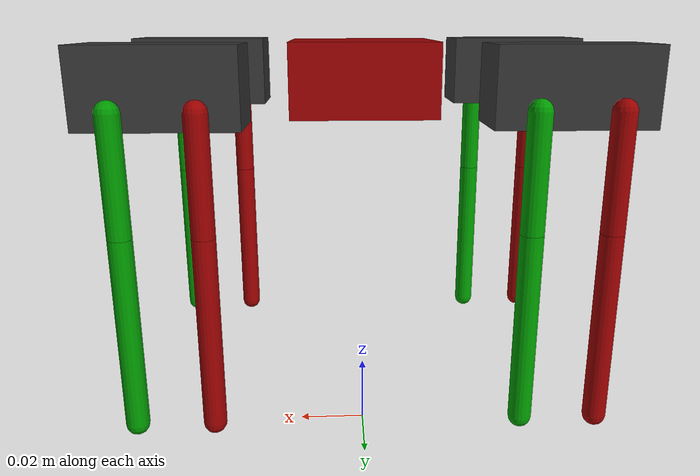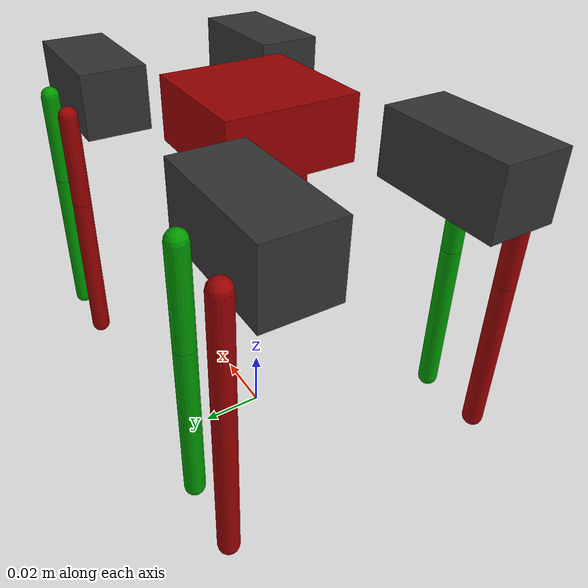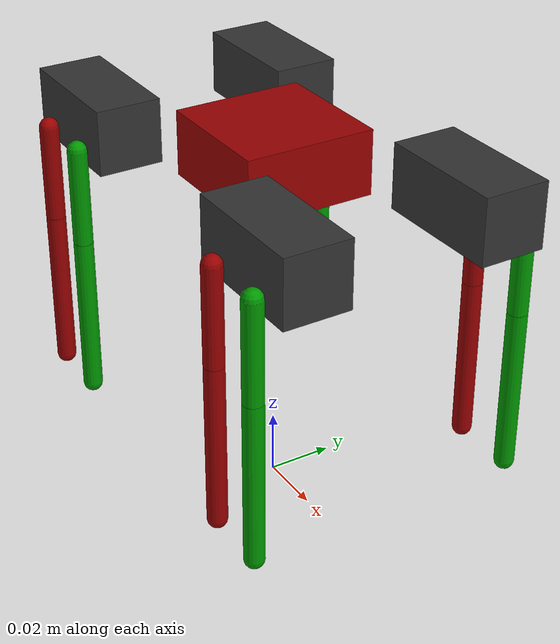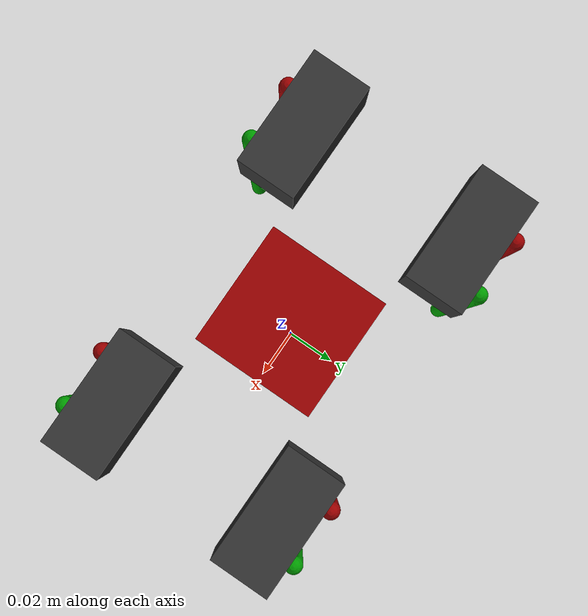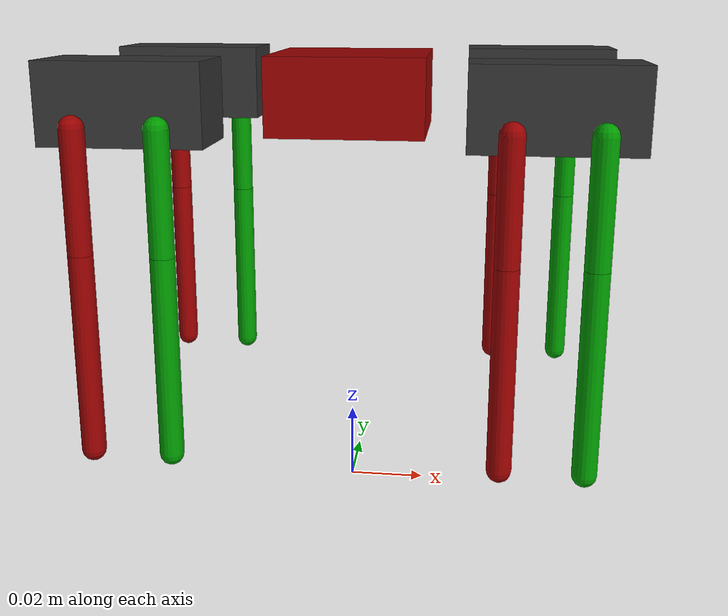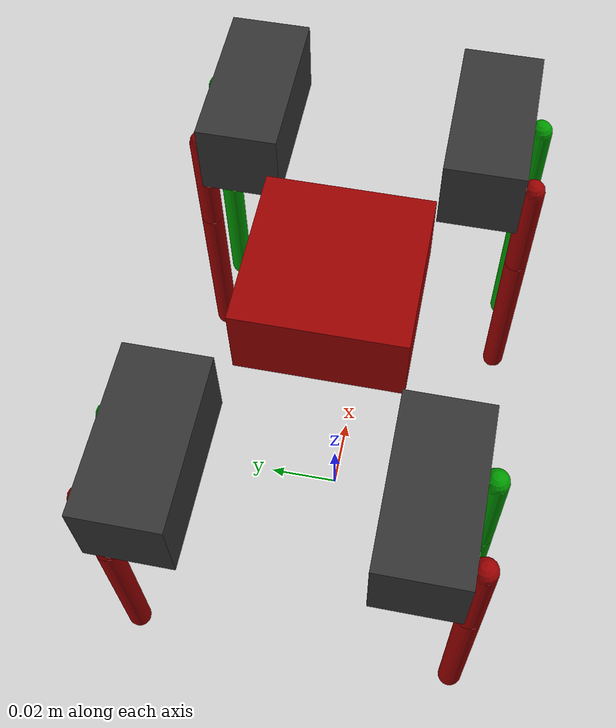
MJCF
<mujoco model="four_fivebar_planar_xz">
  <option gravity="0 0 -9.81" timestep="0.001" integrator="implicitfast"/>

  <default>
    <joint damping="0.02" armature="0.0002" limited="false"/>
    <geom  contype="1" conaffinity="1" friction="0.6 0.1 0.1"/>
  </default>

  <asset>
    <material name="mat_left_arm"  rgba="0.6 0.0 0.0 1"/>
    <material name="mat_right_arm" rgba="0.0 0.6 0.0 1"/>
    <material name="mat_tilt" rgba="0.2 0.2 0.2 1"/>
  </asset>

  <worldbody>

    <body name="robot" pos="0 0 0.11">
      <joint type="free" />
      <geom  name="base_footprint" type="box" size="0.02 0.02 0.01" material="mat_left_arm"/>

      <!-- =========================
           FRONT LEFT
           ========================= -->
      <body name="leg_FL" pos="0.05 -0.03 0">
        <!-- Tilt added (already in your file) -->
        <joint name="FL_tilt" type="hinge" axis="1 0 0"/>
        <geom  name="FL_tilt_link" type="box" size="0.02 0.01 0.01" material="mat_tilt"/>

        <!-- Left base -->
        <body name="FL_base_left" pos="-0.01 -0.0125 0">
          <body name="FL_shoulder_left" pos="0 0 -0.005">
            <joint name="FL_shoulder_L" type="hinge" axis="0 -1 0"/>
            <geom  name="FL_upper_L" type="capsule" size="0.003" fromto="0 0 0  0 0 -0.03" material="mat_left_arm"/>

            <body name="FL_elbow_left" pos="0 0 -0.03">
              <joint name="FL_elbow_L" type="hinge" axis="0 -1 0"/>
              <geom  name="FL_forearm_L" type="capsule" size="0.003" fromto="0 0 0  0 0 -0.05" material="mat_left_arm"/>
              <site  name="FL_tip_L" pos="0 0 -0.05" size="0.001"/>
            </body>
          </body>
        </body>

        <!-- Right base -->
        <body name="FL_base_right" pos="0.01 -0.0125 0">
          <body name="FL_shoulder_right" pos="0 0 -0.005">
            <joint name="FL_shoulder_R" type="hinge" axis="0 -1 0"/>
            <geom  name="FL_upper_R" type="capsule" size="0.003" fromto="0 0 0  0 0 -0.03" material="mat_right_arm"/>

            <body name="FL_elbow_right" pos="0 0 -0.03">
              <joint name="FL_elbow_R" type="hinge" axis="0 -1 0"/>
              <geom  name="FL_forearm_R" type="capsule" size="0.003" fromto="0 0 0  0 0 -0.05" material="mat_right_arm"/>
              <site  name="FL_tip_R" pos="0 0 -0.05" size="0.001"/>
            </body>
          </body>
        </body>
      </body>

      <!-- =========================
           FRONT RIGHT
           ========================= -->
      <body name="leg_FR" pos="0.05 0.03 0">
        <!-- Tilt added -->
        <joint name="FR_tilt" type="hinge" axis="1 0 0"/>
        <geom  name="FR_tilt_link" type="box" size="0.02 0.01 0.01" material="mat_tilt"/>

        <body name="FR_base_left" pos="-0.01 0.0125 0">
          <body name="FR_shoulder_left" pos="0 0 -0.005">
            <joint name="FR_shoulder_L" type="hinge" axis="0 1 0"/>
            <geom  name="FR_upper_L" type="capsule" size="0.003" fromto="0 0 0  0 0 -0.03" material="mat_left_arm"/>

            <body name="FR_elbow_left" pos="0 0 -0.03">
              <joint name="FR_elbow_L" type="hinge" axis="0 1 0"/>
              <geom  name="FR_forearm_L" type="capsule" size="0.003" fromto="0 0 0  0 0 -0.05" material="mat_left_arm"/>
              <site  name="FR_tip_L" pos="0 0 -0.05" size="0.001"/>
            </body>
          </body>
        </body>

        <body name="FR_base_right" pos="0.01 0.0125 0">
          <body name="FR_shoulder_right" pos="0 0 -0.005">
            <joint name="FR_shoulder_R" type="hinge" axis="0 1 0"/>
            <geom  name="FR_upper_R" type="capsule" size="0.003" fromto="0 0 0  0 0 -0.03" material="mat_right_arm"/>

            <body name="FR_elbow_right" pos="0 0 -0.03">
              <joint name="FR_elbow_R" type="hinge" axis="0 1 0"/>
              <geom  name="FR_forearm_R" type="capsule" size="0.003" fromto="0 0 0  0 0 -0.05" material="mat_right_arm"/>
              <site  name="FR_tip_R" pos="0 0 -0.05" size="0.001"/>
            </body>
          </body>
        </body>
      </body>

      <!-- =========================
           REAR LEFT
           ========================= -->
      <body name="leg_RL" pos="-0.05 -0.03 0">
        <!-- Tilt added -->
        <joint name="RL_tilt" type="hinge" axis="1 0 0"/>
        <geom  name="RL_tilt_link" type="box" size="0.02 0.01 0.01" material="mat_tilt"/>

        <body name="RL_base_left" pos="-0.01 -0.0125 0">
          <body name="RL_shoulder_left" pos="0 0 -0.005">
            <joint name="RL_shoulder_L" type="hinge" axis="0 -1 0"/>
            <geom  name="RL_upper_L" type="capsule" size="0.003" fromto="0 0 0  0 0 -0.03" material="mat_left_arm"/>

            <body name="RL_elbow_left" pos="0 0 -0.03">
              <joint name="RL_elbow_L" type="hinge" axis="0 -1 0"/>
              <geom  name="RL_forearm_L" type="capsule" size="0.003" fromto="0 0 0  0 0 -0.05" material="mat_left_arm"/>
              <site  name="RL_tip_L" pos="0 0 -0.05" size="0.001"/>
            </body>
          </body>
        </body>

        <body name="RL_base_right" pos="0.01 -0.0125 0">
          <body name="RL_shoulder_right" pos="0 0 -0.005">
            <joint name="RL_shoulder_R" type="hinge" axis="0 -1 0"/>
            <geom  name="RL_upper_R" type="capsule" size="0.003" fromto="0 0 0  0 0 -0.03" material="mat_right_arm"/>

            <body name="RL_elbow_right" pos="0 0 -0.03">
              <joint name="RL_elbow_R" type="hinge" axis="0 -1 0"/>
              <geom  name="RL_forearm_R" type="capsule" size="0.003" fromto="0 0 0  0 0 -0.05" material="mat_right_arm"/>
              <site  name="RL_tip_R" pos="0 0 -0.05" size="0.001"/>
            </body>
          </body>
        </body>
      </body>

      <!-- =========================
           REAR RIGHT
           ========================= -->
      <body name="leg_RR" pos="-0.05 0.03 0">
        <!-- Tilt added -->
        <joint name="RR_tilt" type="hinge" axis="1 0 0"/>
        <geom  name="RR_tilt_link" type="box" size="0.02 0.01 0.01" material="mat_tilt"/>

        <body name="RR_base_left" pos="-0.01 0.0125 0">
          <body name="RR_shoulder_left" pos="0 0 -0.005">
            <joint name="RR_shoulder_L" type="hinge" axis="0 1 0"/>
            <geom  name="RR_upper_L" type="capsule" size="0.003" fromto="0 0 0  0 0 -0.03" material="mat_left_arm"/>

            <body name="RR_elbow_left" pos="0 0 -0.03">
              <joint name="RR_elbow_L" type="hinge" axis="0 1 0"/>
              <geom  name="RR_forearm_L" type="capsule" size="0.003" fromto="0 0 0  0 0 -0.05" material="mat_left_arm"/>
              <site  name="RR_tip_L" pos="0 0 -0.05" size="0.001"/>
            </body>
          </body>
        </body>

        <body name="RR_base_right" pos="0.01 0.0125 0">
          <body name="RR_shoulder_right" pos="0 0 -0.005">
            <joint name="RR_shoulder_R" type="hinge" axis="0 1 0"/>
            <geom  name="RR_upper_R" type="capsule" size="0.003" fromto="0 0 0  0 0 -0.03" material="mat_right_arm"/>

            <body name="RR_elbow_right" pos="0 0 -0.03">
              <joint name="RR_elbow_R" type="hinge" axis="0 1 0"/>
              <geom  name="RR_forearm_R" type="capsule" size="0.003" fromto="0 0 0  0 0 -0.05" material="mat_right_arm"/>
              <site  name="RR_tip_R" pos="0 0 -0.05" size="0.001"/>
            </body>
          </body>
        </body>
      </body>

    </body> <!-- /robot -->
  </worldbody>

  <!-- Close each loop so the two distal sites coincide per leg -->
  <equality>
    <connect site1="FL_tip_L" site2="FL_tip_R" solref="0.002 1" solimp="0.95 0.99 0.001"/>
    <connect site1="FR_tip_L" site2="FR_tip_R" solref="0.002 1" solimp="0.95 0.99 0.001"/>
    <connect site1="RL_tip_L" site2="RL_tip_R" solref="0.002 1" solimp="0.95 0.99 0.001"/>
    <connect site1="RR_tip_L" site2="RR_tip_R" solref="0.002 1" solimp="0.95 0.99 0.001"/>
  </equality>

  <!-- Actuators: shoulders, plus tilt on every leg -->
  <actuator>
    <!-- FL -->
    <position name="motor_FL_shoulder_L" joint="FL_shoulder_L" kp="10" ctrlrange="-3.14159 3.14159"/>
    <position name="motor_FL_shoulder_R" joint="FL_shoulder_R" kp="10" ctrlrange="-3.14159 3.14159"/>
    <position name="motor_FL_tilt"       joint="FL_tilt"       kp="10" ctrlrange="-3.14159 3.14159"/>

    <!-- RL -->
    <position name="motor_RL_shoulder_L" joint="RL_shoulder_L" kp="10" ctrlrange="-3.14159 3.14159"/>
    <position name="motor_RL_shoulder_R" joint="RL_shoulder_R" kp="10" ctrlrange="-3.14159 3.14159"/>
    <position name="motor_RL_tilt"       joint="RL_tilt"       kp="10" ctrlrange="-3.14159 3.14159"/>

    <!-- FR -->
    <position name="motor_FR_shoulder_L" joint="FR_shoulder_L" kp="10" ctrlrange="-3.14159 3.14159"/>
    <position name="motor_FR_shoulder_R" joint="FR_shoulder_R" kp="10" ctrlrange="-3.14159 3.14159"/>
    <position name="motor_FR_tilt"       joint="FR_tilt"       kp="10" ctrlrange="-3.14159 3.14159"/>

    <!-- RR -->
    <position name="motor_RR_shoulder_L" joint="RR_shoulder_L" kp="10" ctrlrange="-3.14159 3.14159"/>
    <position name="motor_RR_shoulder_R" joint="RR_shoulder_R" kp="10" ctrlrange="-3.14159 3.14159"/>
    <position name="motor_RR_tilt"       joint="RR_tilt"       kp="10" ctrlrange="-3.14159 3.14159"/>
  </actuator>

  <!-- End-effector readouts (tip_L == tip_R per equality) -->
  <sensor>
    <framepos name="FL_ee_pos" objtype="site" objname="FL_tip_L"/>
    <framepos name="FR_ee_pos" objtype="site" objname="FR_tip_L"/>
    <framepos name="RL_ee_pos" objtype="site" objname="RL_tip_L"/>
    <framepos name="RR_ee_pos" objtype="site" objname="RR_tip_L"/>

    <!-- Joint position sensors for debugging IK -->
    <!-- FL -->
    <jointpos name="FL_shoulder_L_pos" joint="FL_shoulder_L"/>
    <jointpos name="FL_shoulder_R_pos" joint="FL_shoulder_R"/>
    <jointpos name="FL_elbow_L_pos" joint="FL_elbow_L"/>
    <jointpos name="FL_elbow_R_pos" joint="FL_elbow_R"/>
    <jointpos name="FL_tilt_pos" joint="FL_tilt"/>

    <!-- FR -->
    <jointpos name="FR_shoulder_L_pos" joint="FR_shoulder_L"/>
    <jointpos name="FR_shoulder_R_pos" joint="FR_shoulder_R"/>
    <jointpos name="FR_elbow_L_pos" joint="FR_elbow_L"/>
    <jointpos name="FR_elbow_R_pos" joint="FR_elbow_R"/>
    <jointpos name="FR_tilt_pos" joint="FR_tilt"/>

    <!-- RL -->
    <jointpos name="RL_shoulder_L_pos" joint="RL_shoulder_L"/>
    <jointpos name="RL_shoulder_R_pos" joint="RL_shoulder_R"/>
    <jointpos name="RL_elbow_L_pos" joint="RL_elbow_L"/>
    <jointpos name="RL_elbow_R_pos" joint="RL_elbow_R"/>
    <jointpos name="RL_tilt_pos" joint="RL_tilt"/>

    <!-- RR -->
    <jointpos name="RR_shoulder_L_pos" joint="RR_shoulder_L"/>
    <jointpos name="RR_shoulder_R_pos" joint="RR_shoulder_R"/>
    <jointpos name="RR_elbow_L_pos" joint="RR_elbow_L"/>
    <jointpos name="RR_elbow_R_pos" joint="RR_elbow_R"/>
    <jointpos name="RR_tilt_pos" joint="RR_tilt"/>
  </sensor>
</mujoco>
